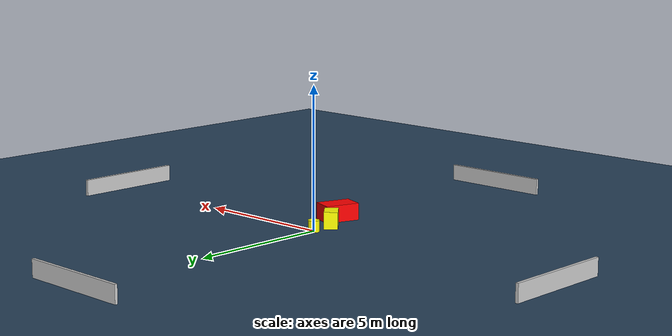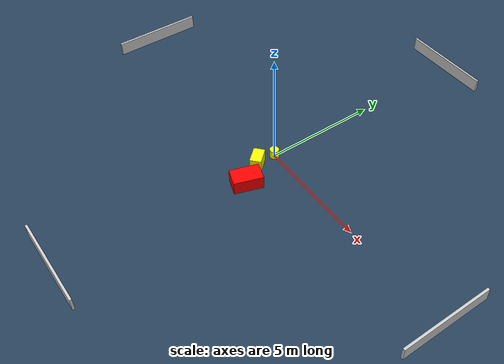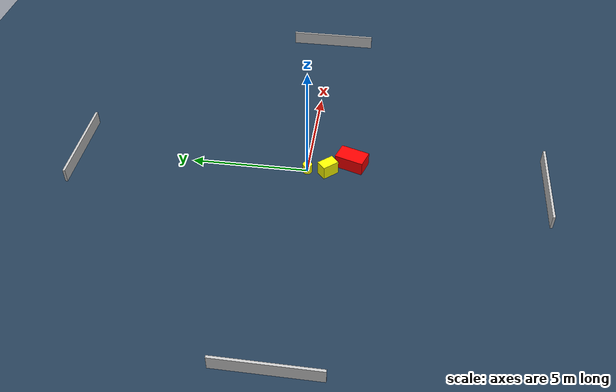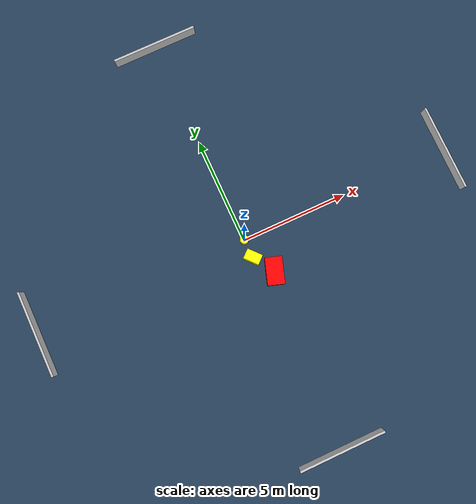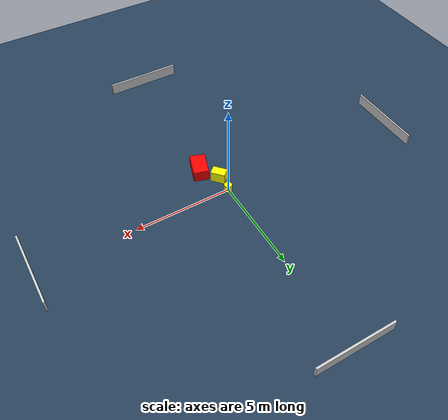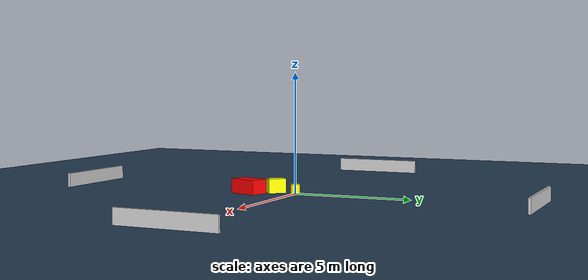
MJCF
<?xml version="1.0" ?>
<mujoco model="generated_environment">
  <option timestep="0.01" integrator="RK4" cone="elliptic"/>
  <default>
    <geom density="1"/>
  </default>
  <asset>
    <texture builtin="gradient" height="3072" name="skybox" rgb1="0.3 0.5 0.7" rgb2="0 0 0" type="skybox" width="512"/>
    <texture builtin="checker" height="300" name="groundplane" rgb1="0.2 0.3 0.4" rgb2="0.1 0.2 0.3" type="2d" width="300"/>
    <material name="groundplane" reflectance="0.2" texrepeat="5 5" texture="groundplane"/>
  </asset>
  <worldbody>
    <light dir="0 0 -1" directional="true" pos="0 0 1.5"/>
    <geom condim="3" friction="0.5 0.005 0.001" material="groundplane" name="floor" pos="0 0 0" size="0 0 0.05" type="plane"/>
    <body name="walls">
      <geom name="wall_1" condim="4" pos="-10.0 0.0 0.3" rgba="0.800000011920929 0.800000011920929 0.800000011920929 1.0" size="0.05 2.0 0.3" type="box"/>
      <geom name="wall_2" condim="4" pos="10.0 0.0 0.3" rgba="0.800000011920929 0.800000011920929 0.800000011920929 1.0" size="0.05 2.0 0.3" type="box"/>
      <geom name="wall_3" condim="4" pos="0.0 -10.0 0.3" rgba="0.800000011920929 0.800000011920929 0.800000011920929 1.0" size="2.0 0.05 0.3" type="box"/>
      <geom name="wall_4" condim="4" pos="0.0 10.0 0.3" rgba="0.800000011920929 0.800000011920929 0.800000011920929 1.0" size="2.0 0.05 0.3" type="box"/>
    </body>
    <body name="robot">
      <joint name="joint_x" type="slide" pos="0 0 0" axis="1 0 0"/>
      <joint name="joint_y" type="slide" pos="0 0 0" axis="0 1 0"/>
      <geom name="robot" type="cylinder" pos="0.0 0.0 0.2" size="0.2 0.2 0.0" mass="5.0" friction="1.0 0.005 0.0001" condim="4" rgba="1.0 1.0 0.0 1.0"/>
    </body>
    <body name="obstacle_1_movable">
      <geom name="obstacle_1_movable" condim="4" pos="0.02228366960199273 -0.8757764115445109 0.3" euler="0 0 41.624940411649696" friction="0.0 0.005 0.001" rgba="1.0 1.0 0.0 1.0" size="0.24045042347936826 0.36986135583221424 0.3" type="box" mass="0.1"/>
      <joint type="free"/>
    </body>
    <body name="obstacle_2_static">
      <geom name="obstacle_2_static" condim="4" pos="0.6323547288141237 -1.8388768752777669 0.3" euler="0 0 71.66603028184463" friction="0.0 0.005 0.001" rgba="1.0 0.0 0.0 1.0" size="0.62451073689631 0.3899108203919291 0.3" type="box"/>
    </body>
  </worldbody>
  <actuator>
    <motor name="actuator_x" joint="joint_x" gear="1" ctrlrange="-1 1"/>
    <motor name="actuator_y" joint="joint_y" gear="1" ctrlrange="-1 1"/>
  </actuator>
</mujoco>
